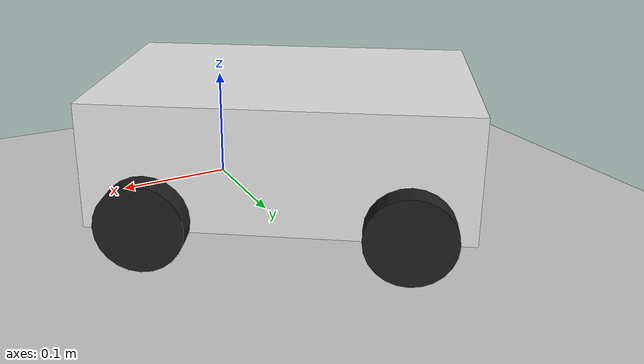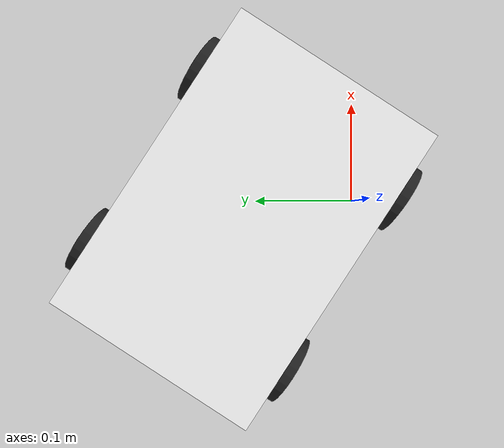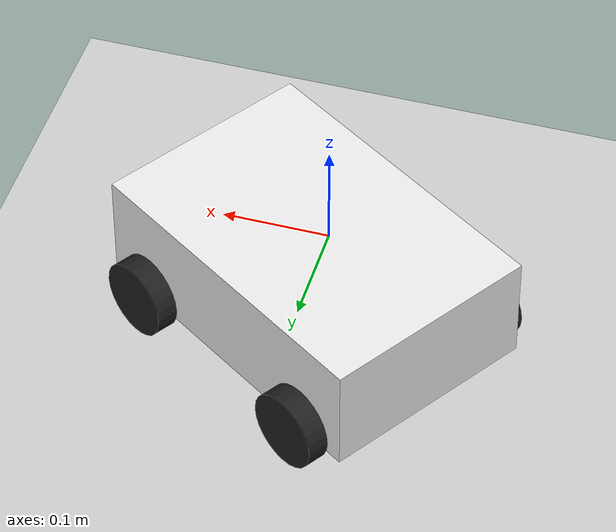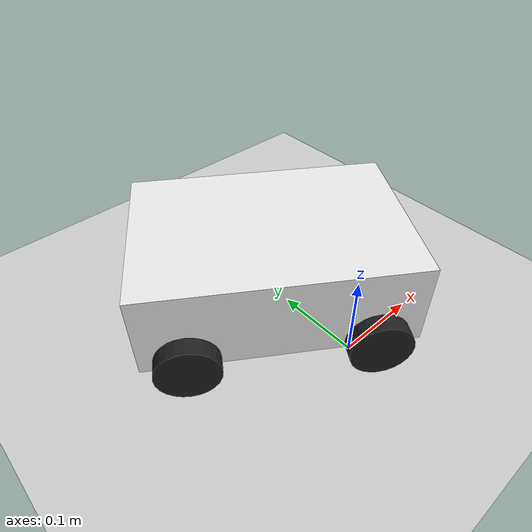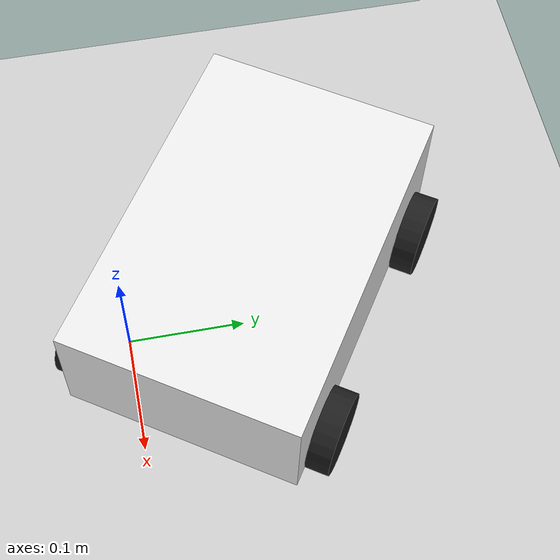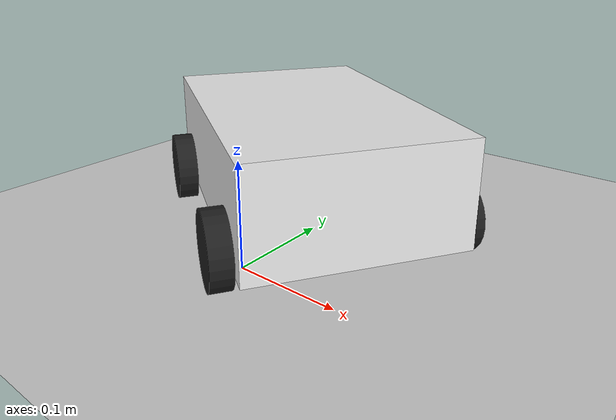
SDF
<sdf version="1.7">
 <world name="default">
  <light name="sun" type="directional">
   <pose>0 0 10 0 -0 0</pose>
   <diffuse>0.8 0.8 0.8 1</diffuse>
   <specular>0.2 0.2 0.2 1</specular>
   <attenuation>
    <range>1000</range>
    <constant>0.9</constant>
    <linear>0.01</linear>
    <quadratic>0.001</quadratic>
   </attenuation>
   <direction>-0.5 0.1 -0.9</direction>
   <spot><inner_angle>0</inner_angle><outer_angle>0</outer_angle><falloff>0</falloff></spot>
  </light>
  <model name="ground_plane">
   <static>1</static>
   <link name="link">
    <collision name="collision">
     <geometry><plane><normal>0 0 1</normal><size>100 100</size></plane></geometry>
     <surface>
      <contact><collide_bitmask>65535</collide_bitmask></contact>
      <friction><ode><mu>100</mu><mu2>50</mu2></ode></friction>
     </surface>
    </collision>
    <visual name="visual">
     <cast_shadows>0</cast_shadows>
     <geometry><plane><normal>0 0 1</normal><size>100 100</size></plane></geometry>
     <material>
      <script><uri>file://media/materials/scripts/gazebo.material</uri><name>Gazebo/Grey</name></script>
     </material>
    </visual>
   </link>
  </model>
  <gravity>0 0 -9.8</gravity>
  <magnetic_field>6e-06 2.3e-05 -4.2e-05</magnetic_field>
  <atmosphere type="adiabatic"/>
  <physics type="ode">
   <max_step_size>0.001</max_step_size>
   <real_time_factor>1</real_time_factor>
   <real_time_update_rate>1000</real_time_update_rate>
  </physics>
  <scene><ambient>0.4 0.4 0.4 1</ambient><background>0.7 0.7 0.7 1</background><shadows>1</shadows></scene>
  <audio><device>default</device></audio>
  <spherical_coordinates>
   <surface_model>EARTH_WGS84</surface_model>
   <latitude_deg>0</latitude_deg>
   <longitude_deg>0</longitude_deg>
   <elevation>0</elevation>
   <heading_deg>0</heading_deg>
  </spherical_coordinates>
  <model name="my_bot">
   <link name="base_link">
    <inertial>
     <pose>-0.016667 0 0.043333 0 -0 0</pose>
     <mass>1.2</mass>
     <inertia>
      <ixx>0.0206927</ixx>
      <ixy>0</ixy>
      <ixz>-0.000666667</ixz>
      <iyy>0.00710333</iyy>
      <iyz>-2.28854e-08</iyz>
      <izz>0.0153927</izz>
     </inertia>
    </inertial>
    <collision name="base_link_fixed_joint_lump__chassis_collision">
     <pose>0 0 0.05 0 -0 0</pose>
     <geometry><box><size>0.3 0.2 0.1</size></box></geometry>
    </collision>
    <collision name="base_link_fixed_joint_lump__left_back_wheel_collision_1">
     <pose>-0.1 0.11 0.01 1.57075 -0 0</pose>
     <geometry><cylinder><length>0.02</length><radius>0.035</radius></cylinder></geometry>
     <surface><friction><ode><mu>0.001</mu><mu2>0.001</mu2></ode></friction></surface>
    </collision>
    <collision name="base_link_fixed_joint_lump__right_back_wheel_collision_2">
     <pose>-0.1 -0.11 0.01 1.57075 -0 0</pose>
     <geometry><cylinder><length>0.02</length><radius>0.035</radius></cylinder></geometry>
     <surface><friction><ode><mu>0.001</mu><mu2>0.001</mu2></ode></friction></surface>
    </collision>
    <visual name="base_link_fixed_joint_lump__chassis_visual">
     <pose>0 0 0.05 0 -0 0</pose>
     <geometry><box><size>0.3 0.2 0.1</size></box></geometry>
     <material>
      <script><name>Gazebo/White</name><uri>file://media/materials/scripts/gazebo.material</uri></script>
     </material>
    </visual>
    <visual name="base_link_fixed_joint_lump__left_back_wheel_visual_1">
     <pose>-0.1 0.11 0.01 1.57075 -0 0</pose>
     <geometry><cylinder><length>0.02</length><radius>0.035</radius></cylinder></geometry>
     <material>
      <script><name>Gazebo/Black</name><uri>file://media/materials/scripts/gazebo.material</uri></script>
     </material>
    </visual>
    <visual name="base_link_fixed_joint_lump__right_back_wheel_visual_2">
     <pose>-0.1 -0.11 0.01 1.57075 -0 0</pose>
     <geometry><cylinder><length>0.02</length><radius>0.035</radius></cylinder></geometry>
     <material>
      <script><name>Gazebo/Black</name><uri>file://media/materials/scripts/gazebo.material</uri></script>
     </material>
    </visual>
   </link>
   <joint name="left_front_wheel_joint" type="revolute">
    <pose relative_to="base_link">0.1 0.11 0.01 1.57075 -0 0</pose>
    <parent>base_link</parent>
    <child>left_front_wheel</child>
    <axis>
     <xyz>0 0 1</xyz>
     <limit><lower>-1e+16</lower><upper>1e+16</upper></limit>
     <dynamics><spring_reference>0</spring_reference><spring_stiffness>0</spring_stiffness></dynamics>
    </axis>
   </joint>
   <link name="left_front_wheel">
    <pose relative_to="left_front_wheel_joint">0 0 0 0 -0 0</pose>
    <inertial>
     <mass>0.1</mass>
     <inertia><ixx>0.000253</ixx><ixy>0</ixy><ixz>0</ixz><iyy>0.000253</iyy><iyz>0</iyz><izz>0.0005</izz></inertia>
    </inertial>
    <collision name="left_front_wheel_collision">
     <pose>0 0 0 1.57075 -0 0</pose>
     <geometry><cylinder><length>0.02</length><radius>0.035</radius></cylinder></geometry>
    </collision>
    <visual name="left_front_wheel_visual">
     <geometry><cylinder><length>0.02</length><radius>0.035</radius></cylinder></geometry>
     <material>
      <script><name>Gazebo/Black</name><uri>file://media/materials/scripts/gazebo.material</uri></script>
     </material>
    </visual>
   </link>
   <joint name="right_front_wheel_joint" type="revolute">
    <pose relative_to="base_link">0.1 -0.11 0.01 1.57075 -0 0</pose>
    <parent>base_link</parent>
    <child>right_front_wheel</child>
    <axis>
     <xyz>0 0 1</xyz>
     <limit><lower>-1e+16</lower><upper>1e+16</upper></limit>
     <dynamics><spring_reference>0</spring_reference><spring_stiffness>0</spring_stiffness></dynamics>
    </axis>
   </joint>
   <link name="right_front_wheel">
    <pose relative_to="right_front_wheel_joint">0 0 0 0 -0 0</pose>
    <inertial>
     <mass>0.1</mass>
     <inertia><ixx>0.000253</ixx><ixy>0</ixy><ixz>0</ixz><iyy>0.000253</iyy><iyz>0</iyz><izz>0.0005</izz></inertia>
    </inertial>
    <collision name="right_front_wheel_collision">
     <geometry><cylinder><length>0.02</length><radius>0.035</radius></cylinder></geometry>
    </collision>
    <visual name="right_front_wheel_visual">
     <geometry><cylinder><length>0.02</length><radius>0.035</radius></cylinder></geometry>
     <material>
      <script><name>Gazebo/Black</name><uri>file://media/materials/scripts/gazebo.material</uri></script>
     </material>
    </visual>
   </link>
   <static>0</static>
   <plugin name="diff_drive" filename="libgazebo_ros_diff_drive.so">
    <left_joint>left_front_wheel_joint</left_joint>
    <right_joint>right_front_wheel_joint</right_joint>
    <wheel_separation>0.22</wheel_separation>
    <wheel_diameter>0.07</wheel_diameter>
    <max_wheel_torque>200</max_wheel_torque>
    <max_wheel_acceleration>10.0</max_wheel_acceleration>
    <odometry_frame>odom</odometry_frame>
    <robot_base_frame>base_link</robot_base_frame>
    <publish_odom>1</publish_odom>
    <publish_odom_tf>1</publish_odom_tf>
    <publish_wheel_tf>1</publish_wheel_tf>
   </plugin>
   <pose>-0.018762 0.112266 0.024996 -0 4.7e-05 -0.578852</pose>
  </model>
 </world>
</sdf>
